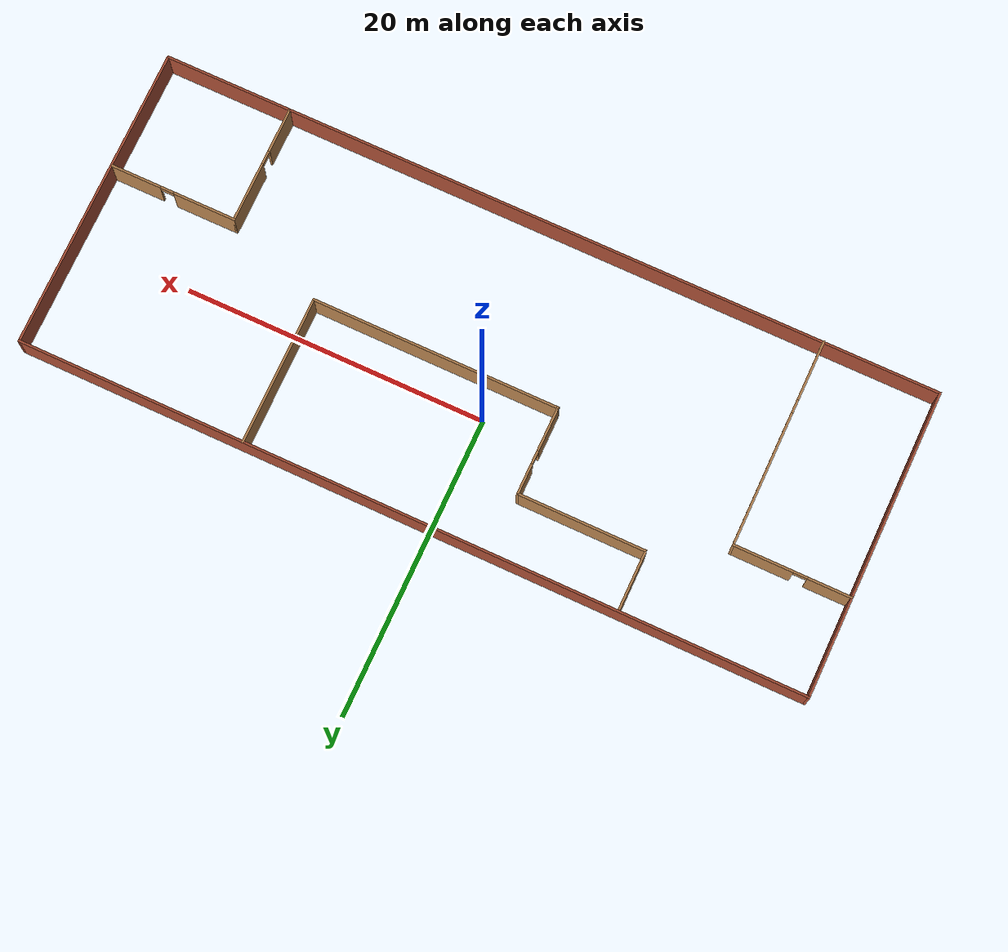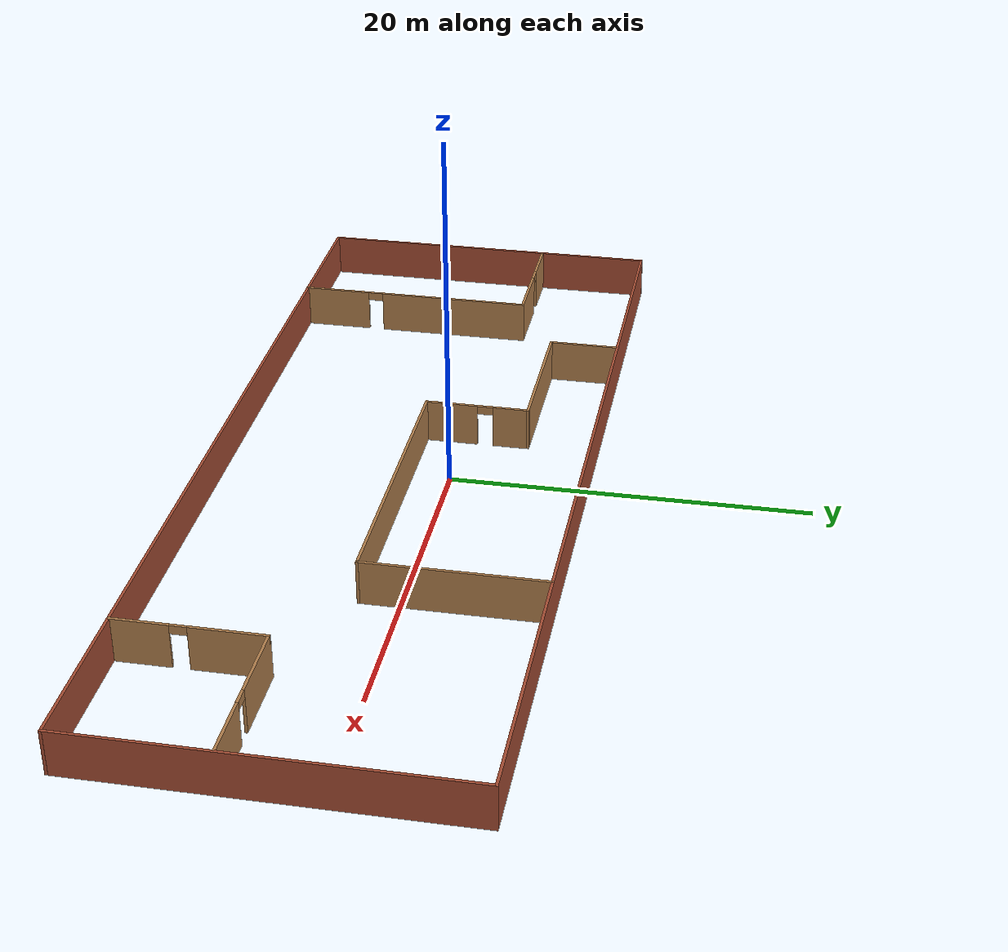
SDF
<?xml version='1.0'?>
<sdf version='1.6'>
  <model name='My_building'>
    <pose frame=''>1.38814 -2.48312 0 0 -0 0</pose>
    <link name='Wall_10'>
      <collision name='Wall_10_Collision'>
        <geometry>
          <box>
            <size>4 0.15 2.5</size>
          </box>
        </geometry>
        <pose frame=''>0 0 1.25 0 -0 0</pose>
      </collision>
      <visual name='Wall_10_Visual'>
        <pose frame=''>0 0 1.25 0 -0 0</pose>
        <geometry>
          <box>
            <size>4 0.15 2.5</size>
          </box>
        </geometry>
        <material>
          <script>
            <uri>file://media/materials/scripts/gazebo.material</uri>
            <name>Gazebo/Wood</name>
          </script>
          <ambient>1 1 1 1</ambient>
        </material>
        <meta>
          <layer>0</layer>
        </meta>
      </visual>
      <pose frame=''>-13.7983 8.19008 0 0 -0 1.5708</pose>
    </link>
    <link name='Wall_13'>
      <collision name='Wall_13_Collision'>
        <geometry>
          <box>
            <size>10 0.15 2.5</size>
          </box>
        </geometry>
        <pose frame=''>0 0 1.25 0 -0 0</pose>
      </collision>
      <visual name='Wall_13_Visual'>
        <pose frame=''>0 0 1.25 0 -0 0</pose>
        <geometry>
          <box>
            <size>10 0.15 2.5</size>
          </box>
        </geometry>
        <material>
          <script>
            <uri>file://media/materials/scripts/gazebo.material</uri>
            <name>Gazebo/Wood</name>
          </script>
          <ambient>1 1 1 1</ambient>
        </material>
        <meta>
          <layer>0</layer>
        </meta>
      </visual>
      <pose frame=''>10.9198 5.26327 0 0 0 -1.5708</pose>
    </link>
    <link name='Wall_14'>
      <collision name='Wall_14_Collision'>
        <geometry>
          <box>
            <size>16.5 0.15 2.5</size>
          </box>
        </geometry>
        <pose frame=''>0 0 1.25 0 -0 0</pose>
      </collision>
      <visual name='Wall_14_Visual'>
        <pose frame=''>0 0 1.25 0 -0 0</pose>
        <geometry>
          <box>
            <size>16.5 0.15 2.5</size>
          </box>
        </geometry>
        <material>
          <script>
            <uri>file://media/materials/scripts/gazebo.material</uri>
            <name>Gazebo/Wood</name>
          </script>
          <ambient>0.996078 0.47451 0.0196078 1</ambient>
        </material>
        <meta>
          <layer>0</layer>
        </meta>
      </visual>
      <pose frame=''>2.74482 0.338271 0 0 -0 3.14159</pose>
    </link>
    <link name='Wall_15'>
      <pose frame=''>-5.43018 3.26327 0 0 -0 1.5708</pose>
      <visual name='Wall_15_Visual_0'>
        <pose frame=''>-1.49276 0 1.25 0 -0 0</pose>
        <geometry>
          <box>
            <size>3.01449 0.15 2.5</size>
          </box>
        </geometry>
        <material>
          <script>
            <uri>file://media/materials/scripts/gazebo.material</uri>
            <name>Gazebo/Wood</name>
          </script>
          <ambient>1 1 1 1</ambient>
        </material>
        <meta>
          <layer>0</layer>
        </meta>
      </visual>
      <collision name='Wall_15_Collision_0'>
        <geometry>
          <box>
            <size>3.01449 0.15 2.5</size>
          </box>
        </geometry>
        <pose frame=''>-1.49276 0 1.25 0 -0 0</pose>
      </collision>
      <visual name='Wall_15_Visual_1'>
        <pose frame=''>1.95724 0 1.25 0 -0 0</pose>
        <geometry>
          <box>
            <size>2.08551 0.15 2.5</size>
          </box>
        </geometry>
        <material>
          <script>
            <uri>file://media/materials/scripts/gazebo.material</uri>
            <name>Gazebo/Wood</name>
          </script>
          <ambient>1 1 1 1</ambient>
        </material>
        <meta>
          <layer>0</layer>
        </meta>
      </visual>
      <collision name='Wall_15_Collision_1'>
        <geometry>
          <box>
            <size>2.08551 0.15 2.5</size>
          </box>
        </geometry>
        <pose frame=''>1.95724 0 1.25 0 -0 0</pose>
      </collision>
      <visual name='Wall_15_Visual_2'>
        <pose frame=''>0.464491 0 2.25 0 -0 0</pose>
        <geometry>
          <box>
            <size>0.9 0.15 0.5</size>
          </box>
        </geometry>
        <material>
          <script>
            <uri>file://media/materials/scripts/gazebo.material</uri>
            <name>Gazebo/Wood</name>
          </script>
          <ambient>1 1 1 1</ambient>
        </material>
        <meta>
          <layer>0</layer>
        </meta>
      </visual>
      <collision name='Wall_15_Collision_2'>
        <geometry>
          <box>
            <size>0.9 0.15 0.5</size>
          </box>
        </geometry>
        <pose frame=''>0.464491 0 2.25 0 -0 0</pose>
      </collision>
    </link>
    <link name='Wall_16'>
      <collision name='Wall_16_Collision'>
        <geometry>
          <box>
            <size>8.5 0.15 2.5</size>
          </box>
        </geometry>
        <pose frame=''>0 0 1.25 0 -0 0</pose>
      </collision>
      <visual name='Wall_16_Visual'>
        <pose frame=''>0 0 1.25 0 -0 0</pose>
        <geometry>
          <box>
            <size>8.5 0.15 2.5</size>
          </box>
        </geometry>
        <material>
          <script>
            <uri>file://media/materials/scripts/gazebo.material</uri>
            <name>Gazebo/Wood</name>
          </script>
          <ambient>1 1 1 1</ambient>
        </material>
        <meta>
          <layer>0</layer>
        </meta>
      </visual>
      <pose frame=''>-9.60518 6.18827 0 0 -0 3.14159</pose>
    </link>
    <link name='Wall_23'>
      <pose frame=''>17.6076 -6.18169 0 0 -0 1.5708</pose>
      <visual name='Wall_23_Visual_0'>
        <pose frame=''>-2.48677 0 1.25 0 -0 0</pose>
        <geometry>
          <box>
            <size>3.02646 0.15 2.5</size>
          </box>
        </geometry>
        <material>
          <script>
            <uri>file://media/materials/scripts/gazebo.material</uri>
            <name>Gazebo/Wood</name>
          </script>
          <ambient>1 1 1 1</ambient>
        </material>
        <meta>
          <layer>0</layer>
        </meta>
      </visual>
      <collision name='Wall_23_Collision_0'>
        <geometry>
          <box>
            <size>3.02646 0.15 2.5</size>
          </box>
        </geometry>
        <pose frame=''>-2.48677 0 1.25 0 -0 0</pose>
      </collision>
      <visual name='Wall_23_Visual_1'>
        <pose frame=''>1.96323 0 1.25 0 -0 0</pose>
        <geometry>
          <box>
            <size>4.07354 0.15 2.5</size>
          </box>
        </geometry>
        <material>
          <script>
            <uri>file://media/materials/scripts/gazebo.material</uri>
            <name>Gazebo/Wood</name>
          </script>
          <ambient>1 1 1 1</ambient>
        </material>
        <meta>
          <layer>0</layer>
        </meta>
      </visual>
      <collision name='Wall_23_Collision_1'>
        <geometry>
          <box>
            <size>4.07354 0.15 2.5</size>
          </box>
        </geometry>
        <pose frame=''>1.96323 0 1.25 0 -0 0</pose>
      </collision>
      <visual name='Wall_23_Visual_2'>
        <pose frame=''>-0.523537 0 2.25 0 -0 0</pose>
        <geometry>
          <box>
            <size>0.9 0.15 0.5</size>
          </box>
        </geometry>
        <material>
          <script>
            <uri>file://media/materials/scripts/gazebo.material</uri>
            <name>Gazebo/Wood</name>
          </script>
          <ambient>1 1 1 1</ambient>
        </material>
        <meta>
          <layer>0</layer>
        </meta>
      </visual>
      <collision name='Wall_23_Collision_2'>
        <geometry>
          <box>
            <size>0.9 0.15 0.5</size>
          </box>
        </geometry>
        <pose frame=''>-0.523537 0 2.25 0 -0 0</pose>
      </collision>
    </link>
    <link name='Wall_24'>
      <pose frame=''>21.7826 -2.25669 0 0 -0 0</pose>
      <visual name='Wall_24_Visual_0'>
        <pose frame=''>-2.14293 0 1.25 0 -0 0</pose>
        <geometry>
          <box>
            <size>4.21413 0.15 2.5</size>
          </box>
        </geometry>
        <material>
          <script>
            <uri>file://media/materials/scripts/gazebo.material</uri>
            <name>Gazebo/Wood</name>
          </script>
          <ambient>1 1 1 1</ambient>
        </material>
        <meta>
          <layer>0</layer>
        </meta>
      </visual>
      <collision name='Wall_24_Collision_0'>
        <geometry>
          <box>
            <size>4.21413 0.15 2.5</size>
          </box>
        </geometry>
        <pose frame=''>-2.14293 0 1.25 0 -0 0</pose>
      </collision>
      <visual name='Wall_24_Visual_1'>
        <pose frame=''>2.55707 0 1.25 0 -0 0</pose>
        <geometry>
          <box>
            <size>3.38587 0.15 2.5</size>
          </box>
        </geometry>
        <material>
          <script>
            <uri>file://media/materials/scripts/gazebo.material</uri>
            <name>Gazebo/Wood</name>
          </script>
          <ambient>1 1 1 1</ambient>
        </material>
        <meta>
          <layer>0</layer>
        </meta>
      </visual>
      <collision name='Wall_24_Collision_1'>
        <geometry>
          <box>
            <size>3.38587 0.15 2.5</size>
          </box>
        </geometry>
        <pose frame=''>2.55707 0 1.25 0 -0 0</pose>
      </collision>
      <visual name='Wall_24_Visual_2'>
        <pose frame=''>0.414131 0 2.25 0 -0 0</pose>
        <geometry>
          <box>
            <size>0.9 0.15 0.5</size>
          </box>
        </geometry>
        <material>
          <script>
            <uri>file://media/materials/scripts/gazebo.material</uri>
            <name>Gazebo/Wood</name>
          </script>
          <ambient>1 1 1 1</ambient>
        </material>
        <meta>
          <layer>0</layer>
        </meta>
      </visual>
      <collision name='Wall_24_Collision_2'>
        <geometry>
          <box>
            <size>0.9 0.15 0.5</size>
          </box>
        </geometry>
        <pose frame=''>0.414131 0 2.25 0 -0 0</pose>
      </collision>
    </link>
    <link name='Wall_26'>
      <pose frame=''>-22.1969 3.66097 0 0 -0 0</pose>
      <visual name='Wall_26_Visual_0'>
        <pose frame=''>-2.43672 0 1.25 0 -0 0</pose>
        <geometry>
          <box>
            <size>2.87657 0.15 2.5</size>
          </box>
        </geometry>
        <material>
          <script>
            <uri>file://media/materials/scripts/gazebo.material</uri>
            <name>Gazebo/Wood</name>
          </script>
          <ambient>1 1 1 1</ambient>
        </material>
        <meta>
          <layer>0</layer>
        </meta>
      </visual>
      <collision name='Wall_26_Collision_0'>
        <geometry>
          <box>
            <size>2.87657 0.15 2.5</size>
          </box>
        </geometry>
        <pose frame=''>-2.43672 0 1.25 0 -0 0</pose>
      </collision>
      <visual name='Wall_26_Visual_1'>
        <pose frame=''>1.88828 0 1.25 0 -0 0</pose>
        <geometry>
          <box>
            <size>3.97343 0.15 2.5</size>
          </box>
        </geometry>
        <material>
          <script>
            <uri>file://media/materials/scripts/gazebo.material</uri>
            <name>Gazebo/Wood</name>
          </script>
          <ambient>1 1 1 1</ambient>
        </material>
        <meta>
          <layer>0</layer>
        </meta>
      </visual>
      <collision name='Wall_26_Collision_1'>
        <geometry>
          <box>
            <size>3.97343 0.15 2.5</size>
          </box>
        </geometry>
        <pose frame=''>1.88828 0 1.25 0 -0 0</pose>
      </collision>
      <visual name='Wall_26_Visual_2'>
        <pose frame=''>-0.548431 0 2.25 0 -0 0</pose>
        <geometry>
          <box>
            <size>0.9 0.15 0.5</size>
          </box>
        </geometry>
        <material>
          <script>
            <uri>file://media/materials/scripts/gazebo.material</uri>
            <name>Gazebo/Wood</name>
          </script>
          <ambient>1 1 1 1</ambient>
        </material>
        <meta>
          <layer>0</layer>
        </meta>
      </visual>
      <collision name='Wall_26_Collision_2'>
        <geometry>
          <box>
            <size>0.9 0.15 0.5</size>
          </box>
        </geometry>
        <pose frame=''>-0.548431 0 2.25 0 -0 0</pose>
      </collision>
    </link>
    <link name='Wall_27'>
      <pose frame=''>-18.3969 -3.26403 0 0 0 -1.5708</pose>
      <visual name='Wall_27_Visual_0'>
        <pose frame=''>-2.48593 0 1.25 0 -0 0</pose>
        <geometry>
          <box>
            <size>9.02815 0.15 2.5</size>
          </box>
        </geometry>
        <material>
          <script>
            <uri>file://media/materials/scripts/gazebo.material</uri>
            <name>Gazebo/Wood</name>
          </script>
          <ambient>0.996078 0.47451 0.0196078 1</ambient>
        </material>
        <meta>
          <layer>0</layer>
        </meta>
      </visual>
      <collision name='Wall_27_Collision_0'>
        <geometry>
          <box>
            <size>9.02815 0.15 2.5</size>
          </box>
        </geometry>
        <pose frame=''>-2.48593 0 1.25 0 -0 0</pose>
      </collision>
      <visual name='Wall_27_Visual_1'>
        <pose frame=''>4.96407 0 1.25 0 -0 0</pose>
        <geometry>
          <box>
            <size>4.07185 0.15 2.5</size>
          </box>
        </geometry>
        <material>
          <script>
            <uri>file://media/materials/scripts/gazebo.material</uri>
            <name>Gazebo/Wood</name>
          </script>
          <ambient>0.996078 0.47451 0.0196078 1</ambient>
        </material>
        <meta>
          <layer>0</layer>
        </meta>
      </visual>
      <collision name='Wall_27_Collision_1'>
        <geometry>
          <box>
            <size>4.07185 0.15 2.5</size>
          </box>
        </geometry>
        <pose frame=''>4.96407 0 1.25 0 -0 0</pose>
      </collision>
      <visual name='Wall_27_Visual_2'>
        <pose frame=''>2.47815 0 2.25 0 -0 0</pose>
        <geometry>
          <box>
            <size>0.9 0.15 0.5</size>
          </box>
        </geometry>
        <material>
          <script>
            <uri>file://media/materials/scripts/gazebo.material</uri>
            <name>Gazebo/Wood</name>
          </script>
          <ambient>0.996078 0.47451 0.0196078 1</ambient>
        </material>
        <meta>
          <layer>0</layer>
        </meta>
      </visual>
      <collision name='Wall_27_Collision_2'>
        <geometry>
          <box>
            <size>0.9 0.15 0.5</size>
          </box>
        </geometry>
        <pose frame=''>2.47815 0 2.25 0 -0 0</pose>
      </collision>
    </link>
    <link name='Wall_3'>
      <collision name='Wall_3_Collision'>
        <geometry>
          <box>
            <size>52.25 0.15 2.5</size>
          </box>
        </geometry>
        <pose frame=''>0 0 1.25 0 -0 0</pose>
      </collision>
      <visual name='Wall_3_Visual'>
        <pose frame=''>0 0 1.25 0 -0 0</pose>
        <geometry>
          <box>
            <size>52.25 0.15 2.5</size>
          </box>
        </geometry>
        <material>
          <script>
            <uri>file://media/materials/scripts/gazebo.material</uri>
            <name>Gazebo/Bricks</name>
          </script>
          <ambient>1 1 1 1</ambient>
        </material>
        <meta>
          <layer>0</layer>
        </meta>
      </visual>
      <pose frame=''>-1e-06 10.189 0 0 -0 0</pose>
    </link>
    <link name='Wall_4'>
      <collision name='Wall_4_Collision'>
        <geometry>
          <box>
            <size>20.5 0.15 2.5</size>
          </box>
        </geometry>
        <pose frame=''>0 0 1.25 0 -0 0</pose>
      </collision>
      <visual name='Wall_4_Visual'>
        <pose frame=''>0 0 1.25 0 -0 0</pose>
        <geometry>
          <box>
            <size>20.5 0.15 2.5</size>
          </box>
        </geometry>
        <material>
          <script>
            <uri>file://media/materials/scripts/gazebo.material</uri>
            <name>Gazebo/Bricks</name>
          </script>
          <ambient>1 1 1 1</ambient>
        </material>
        <meta>
          <layer>0</layer>
        </meta>
      </visual>
      <pose frame=''>26.05 0.014033 0 0 0 -1.5708</pose>
    </link>
    <link name='Wall_5'>
      <collision name='Wall_5_Collision'>
        <geometry>
          <box>
            <size>52.25 0.15 2.5</size>
          </box>
        </geometry>
        <pose frame=''>0 0 1.25 0 -0 0</pose>
      </collision>
      <visual name='Wall_5_Visual'>
        <pose frame=''>0 0 1.25 0 -0 0</pose>
        <geometry>
          <box>
            <size>52.25 0.15 2.5</size>
          </box>
        </geometry>
        <material>
          <script>
            <uri>file://media/materials/scripts/gazebo.material</uri>
            <name>Gazebo/Bricks</name>
          </script>
          <ambient>1 1 1 1</ambient>
        </material>
        <meta>
          <layer>0</layer>
        </meta>
      </visual>
      <pose frame=''>-1e-06 -10.161 0 0 -0 3.14159</pose>
    </link>
    <link name='Wall_6'>
      <collision name='Wall_6_Collision'>
        <geometry>
          <box>
            <size>20.5 0.15 2.5</size>
          </box>
        </geometry>
        <pose frame=''>0 0 1.25 0 -0 0</pose>
      </collision>
      <visual name='Wall_6_Visual'>
        <pose frame=''>0 0 1.25 0 -0 0</pose>
        <geometry>
          <box>
            <size>20.5 0.15 2.5</size>
          </box>
        </geometry>
        <material>
          <script>
            <uri>file://media/materials/scripts/gazebo.material</uri>
            <name>Gazebo/Bricks</name>
          </script>
          <ambient>1 1 1 1</ambient>
        </material>
        <meta>
          <layer>0</layer>
        </meta>
      </visual>
      <pose frame=''>-26.05 0.014033 0 0 -0 1.5708</pose>
    </link>
    <static>1</static>
  </model>
</sdf>
